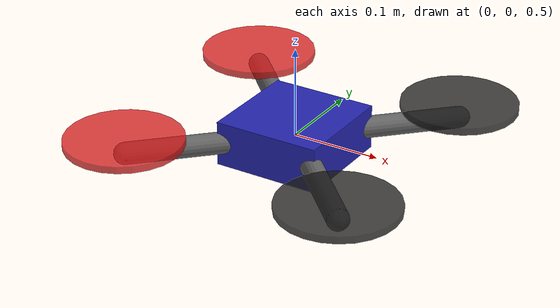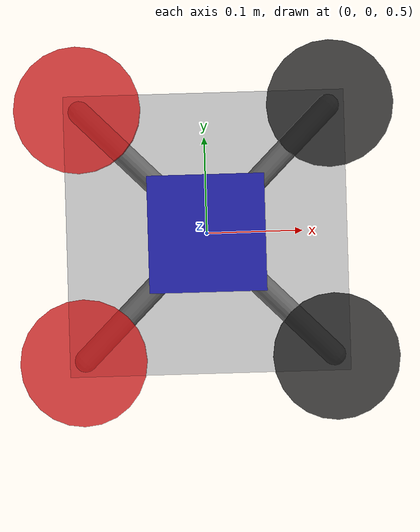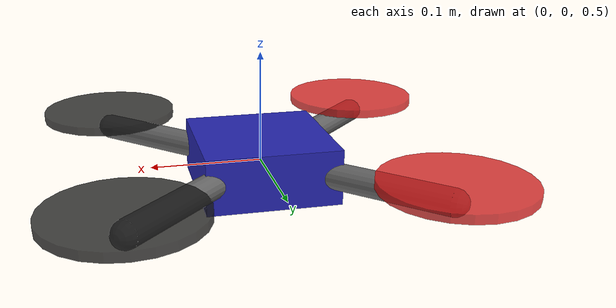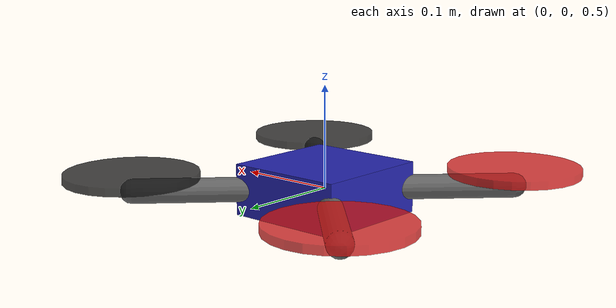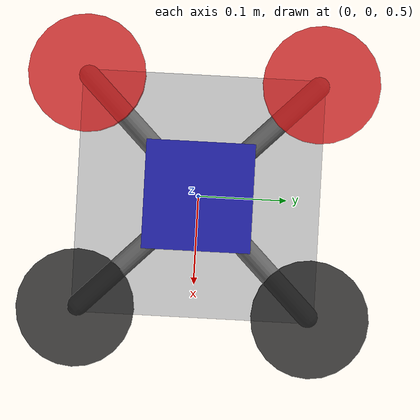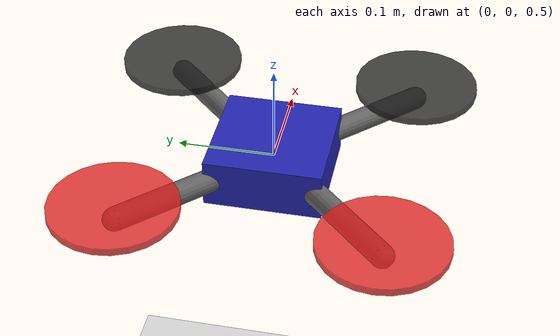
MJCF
<mujoco model="quadcopter_dynamic">

  <option timestep="0.002" gravity="0 0 -9.81" integrator="RK4"/>

  <default>
    <geom rgba="0.8 0.8 0.8 1" contype="1" conaffinity="1"/>
    <joint armature="0.005" damping="0.001"/>
  </default>

  <worldbody>
    <light pos="0 0 5" dir="0 0 -1" diffuse="0.8 0.8 0.8" specular="0.2 0.2 0.2"/>
    <light pos="3 3 3" dir="-1 -1 -1" diffuse="0.3 0.3 0.3"/>
    <geom name="floor" type="plane" size="30 30 0.1" rgba="0.85 0.85 0.85 1"/>

    <body name="quad" pos="0 0 0.5">
      <freejoint name="root"/>

      <inertial pos="0 0 0" mass="0.80"
                diaginertia="0.0035 0.0035 0.0060"/>

      <geom name="body" type="box"
            size="0.06 0.06 0.025"
            mass="0.50"
            rgba="0.15 0.15 0.70 1"/>

      <!-- ── arms (X-configuration, 45°) ── -->
      <geom name="arm_fr" type="capsule" fromto="0 0 0  0.13 -0.13 0" size="0.012" mass="0.05" rgba="0.4 0.4 0.4 1"/>
      <geom name="arm_fl" type="capsule" fromto="0 0 0  0.13  0.13 0" size="0.012" mass="0.05" rgba="0.4 0.4 0.4 1"/>
      <geom name="arm_br" type="capsule" fromto="0 0 0 -0.13 -0.13 0" size="0.012" mass="0.05" rgba="0.4 0.4 0.4 1"/>
      <geom name="arm_bl" type="capsule" fromto="0 0 0 -0.13  0.13 0" size="0.012" mass="0.05" rgba="0.4 0.4 0.4 1"/>

      <!-- ── rotor disks (visual only) ── -->
      <geom name="prop_fr" type="cylinder" pos=" 0.13 -0.13 0.015" size="0.065 0.004" mass="0.025" rgba="0.1 0.1 0.1 0.8"/>
      <geom name="prop_fl" type="cylinder" pos=" 0.13  0.13 0.015" size="0.065 0.004" mass="0.025" rgba="0.1 0.1 0.1 0.8"/>
      <geom name="prop_br" type="cylinder" pos="-0.13 -0.13 0.015" size="0.065 0.004" mass="0.025" rgba="0.9 0.1 0.1 0.8"/>
      <geom name="prop_bl" type="cylinder" pos="-0.13  0.13 0.015" size="0.065 0.004" mass="0.025" rgba="0.9 0.1 0.1 0.8"/>

      <site name="s_fr" pos=" 0.13 -0.13 0" size="0.008" rgba="0 1 0 1"/>  <!-- FR  CW  -->
      <site name="s_fl" pos=" 0.13  0.13 0" size="0.008" rgba="0 1 0 1"/>  <!-- FL  CCW -->
      <site name="s_br" pos="-0.13 -0.13 0" size="0.008" rgba="1 0 0 1"/>  <!-- BR  CCW -->
      <site name="s_bl" pos="-0.13  0.13 0" size="0.008" rgba="1 0 0 1"/>  <!-- BL  CW  -->

      <!-- IMU at centre of mass -->
      <site name="imu" pos="0 0 0" size="0.005" rgba="1 1 0 1"/>

    </body>
  </worldbody>

  <actuator>
    <motor name="m_fr" site="s_fr" gear="0 0 1 0 0 -0.012" ctrllimited="true" ctrlrange="0 8"/>
    <motor name="m_fl" site="s_fl" gear="0 0 1 0 0  0.012" ctrllimited="true" ctrlrange="0 8"/>
    <motor name="m_br" site="s_br" gear="0 0 1 0 0  0.012" ctrllimited="true" ctrlrange="0 8"/>
    <motor name="m_bl" site="s_bl" gear="0 0 1 0 0 -0.012" ctrllimited="true" ctrlrange="0 8"/>
  </actuator>

  <sensor>
    <!-- position and orientation -->
    <framepos    name="pos"    objtype="site" objname="imu"/>
    <framequat   name="quat"   objtype="site" objname="imu"/>
    <!-- velocities -->
    <framelinvel name="linvel" objtype="site" objname="imu"/>
    <frameangvel name="angvel" objtype="site" objname="imu"/>
    <!-- raw IMU (for realism / future use) -->
    <gyro        name="gyro"   site="imu"/>
    <accelerometer name="accel" site="imu"/>
  </sensor>

</mujoco>
